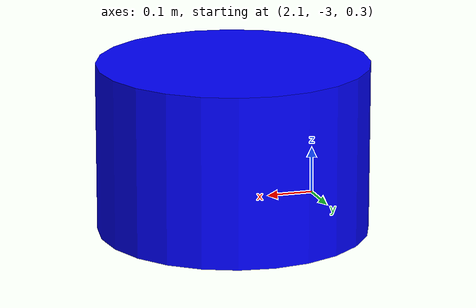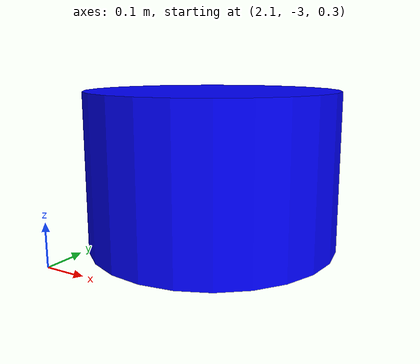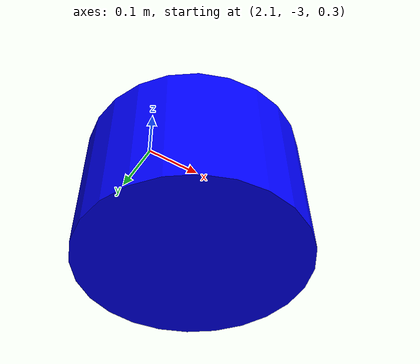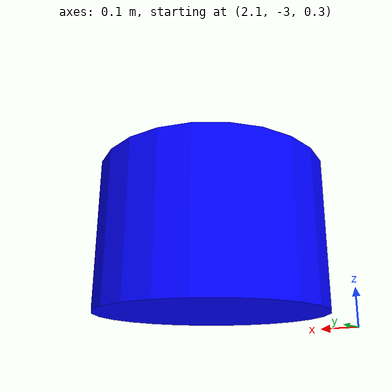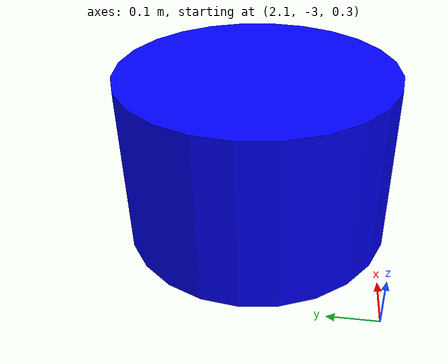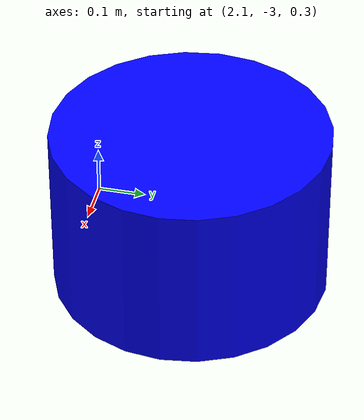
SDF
<sdf version='1.6'>
    <model name='cyl_8'>
      <pose>2.36 -2.74 0.5 0 -0 0</pose>
      <link name='cylinder_link'>
        <inertial>
          <inertia>
            <ixx>0.14580000000000001</ixx>
            <ixy>0</ixy>
            <ixz>0</ixz>
            <iyy>0.14580000000000001</iyy>
            <iyz>0</iyz>
            <izz>0.125</izz>
          </inertia>
          <mass>1</mass>
          <pose>0 0 0 0 -0 0</pose>
        </inertial>
        <collision name='cylinder_collision'>
          <geometry>
            <cylinder>
              <radius>0.28</radius>
              <length>0.35</length>
            </cylinder>
          </geometry>
          <surface>
            <friction>
              <ode/>
            </friction>
            <bounce/>
            <contact/>
          </surface>
        </collision>
        <visual name='cylinder_visual'>
          <geometry>
            <cylinder>
              <radius>0.28</radius>
              <length>0.35</length>
            </cylinder>
          </geometry>
          <material>
            <ambient>0 0 1 1</ambient>
            <diffuse>0 0 1 1</diffuse>
            <specular>0 0 1 1</specular>
          </material>
        </visual>
        <pose>0 0 0 0 -0 0</pose>
        <enable_wind>false</enable_wind>
      </link>
      <static>false</static>
      <self_collide>false</self_collide>
    </model>
    </sdf>
